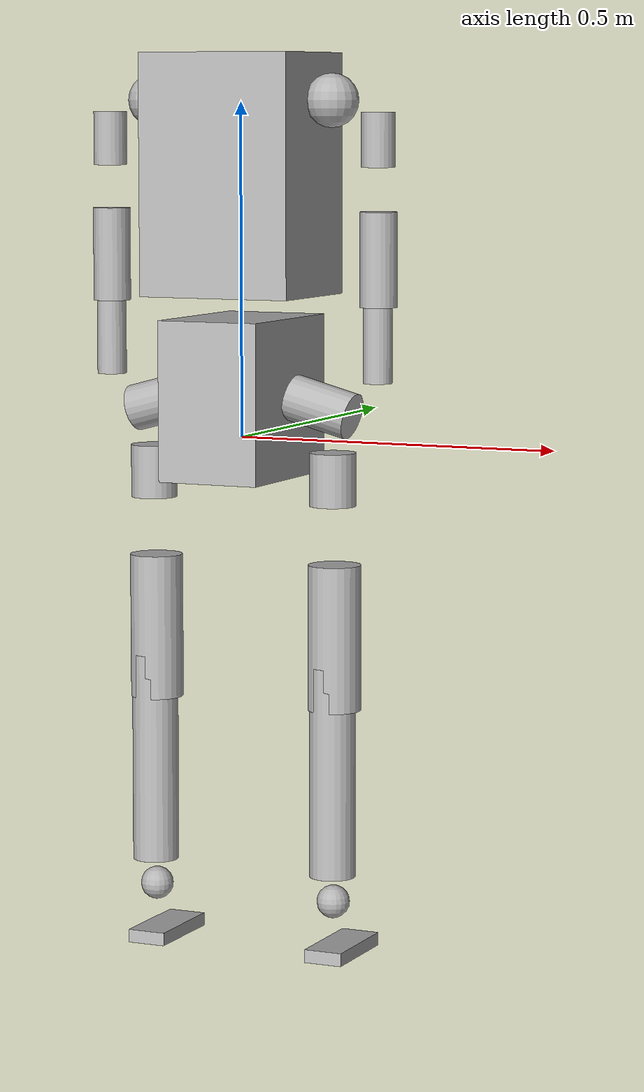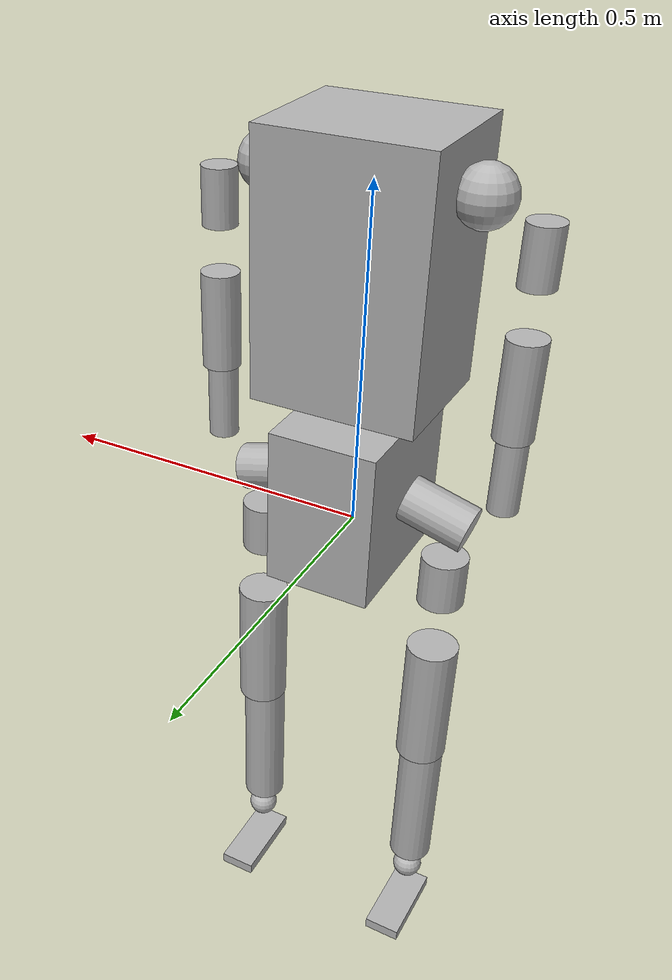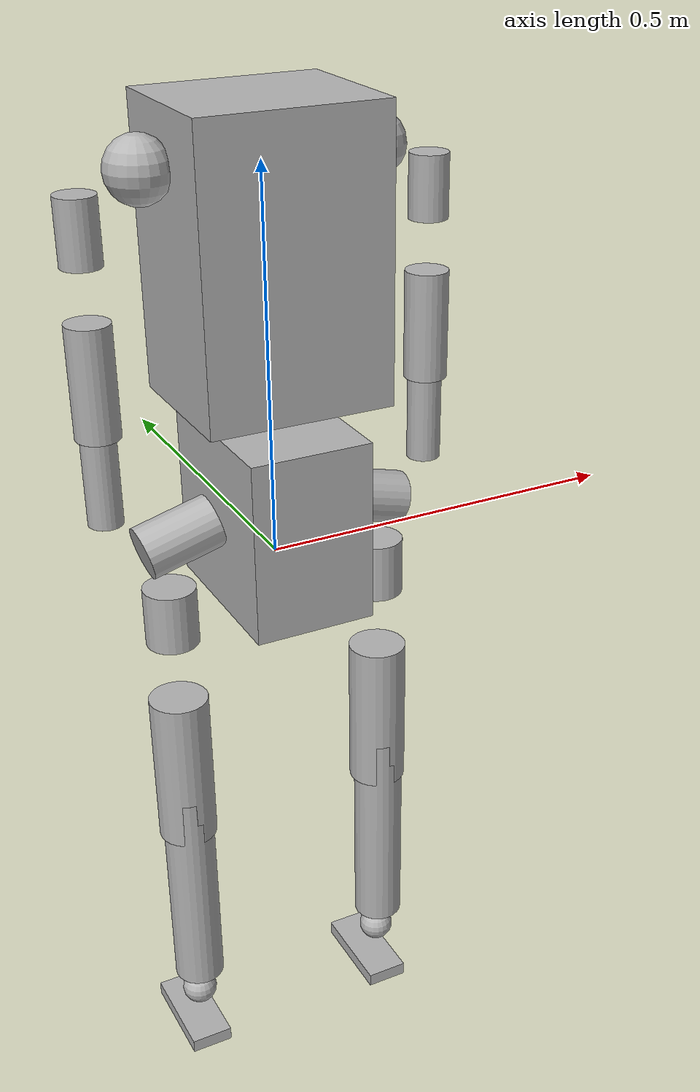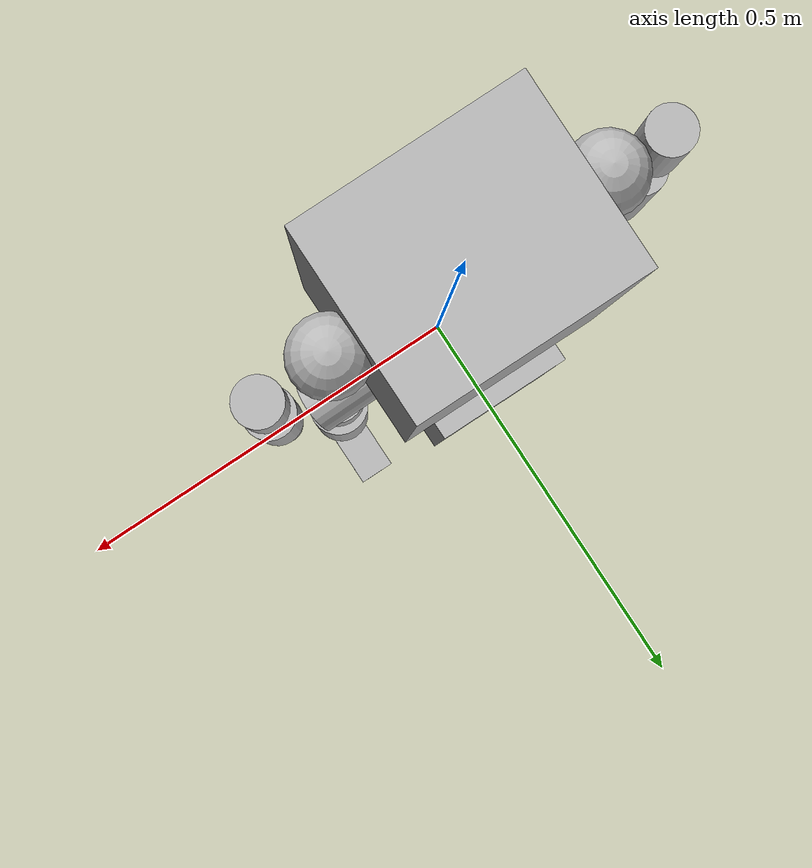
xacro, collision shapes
<?xml version="1.0"?>
<robot name="angad_full_body" xmlns:xacro="http://www.ros.org/wiki/xacro">

    <!-- Find the mesh directory via the upper_body package (which has XP_robot meshes fallback) -->
    <!-- For the RSP we use the XP_robot path directly -->
    <xacro:property name="xp_mesh" value="file:////home/a/humanoid_ws/src/XP_robot/meshes" />
    <xacro:arg name="use_real_hardware" default="false" />

    <material name="silver">
        <color rgba="0.7 0.7 0.7 1.0" />
    </material>

    <!-- Dummy root link for KDL / MoveIt.
         Physics still comes from MuJoCo, so this only affects the URDF tree. -->
    <link name="base_link" />

    <joint name="base_link_to_pelvis" type="fixed">
        <origin xyz="0 0 0" rpy="0 0 0" />
        <parent link="base_link" />
        <child link="pelvis" />
    </joint>

    <!-- ══════════════════════════════════════════════════
       PELVIS  (free root in MuJoCo; dummy parent only for URDF/KDL)
  ══════════════════════════════════════════════════ -->
    <link name="pelvis">
        <inertial>
            <origin xyz="0 0 0.109" rpy="0 0 0" />
            <mass value="5.565" />
            <inertia ixx="0.06430" iyy="0.07731" izz="0.04267"
                ixy="0" iyz="0" ixz="0" />
        </inertial>
        <visual>
            <origin xyz="0 0 0" rpy="0 0 0" />
            <geometry>
                <mesh filename="${xp_mesh}/pelvis.stl" scale="0.001 0.001 0.001" />
            </geometry>
            <material name="silver" />
        </visual>
        <collision>
            <origin xyz="0 0 0.06" rpy="0 0 0" />
            <geometry>
                <box size="0.16 0.24 0.24" />
            </geometry>
        </collision>
    </link>

    <!-- ══ RIGHT LEG ══ -->
    <link name="hip_pitch_r">
        <inertial>
            <origin xyz="-8e-05 0.00346 0.07278" rpy="0 0 0" />
            <mass value="1.008" />
            <inertia ixx="0.00415" iyy="0.00587" izz="0.00350" ixy="0" iyz="0" ixz="0" />
        </inertial>
        <visual>
            <origin xyz="0 0 0" rpy="0 0 0" />
            <geometry>
                <mesh filename="${xp_mesh}/hip_pitch_r.stl" scale="0.001 0.001 0.001" />
            </geometry>
            <material name="silver" />
        </visual>
        <collision>
            <origin xyz="0 0 0.06" rpy="0 0 0" />
            <geometry>
                <cylinder radius="0.035" length="0.10" />
            </geometry>
        </collision>
    </link>
    <joint name="hip_pitch_r" type="revolute">
        <origin xyz="-0.074290 0.000000 0.065550" rpy="-3.141593 -1.308997 -3.141593" />
        <parent link="pelvis" />
        <child link="hip_pitch_r" />
        <axis xyz="0 0 -1" />
        <limit lower="-3.1416" upper="3.1416" effort="150" velocity="5" />
        <dynamics damping="5.0" friction="0.1" />
    </joint>

    <link name="hip_roll_r">
        <inertial>
            <origin xyz="3.5e-05 -3e-08 0.03968" rpy="0 0 0" />
            <mass value="1.319" />
            <inertia ixx="0.00871" iyy="0.01037" izz="0.00721" ixy="0" iyz="0" ixz="0" />
        </inertial>
        <visual>
            <origin xyz="0 0 0" rpy="0 0 0" />
            <geometry>
                <mesh filename="${xp_mesh}/hip_roll_r.stl" scale="0.001 0.001 0.001" />
            </geometry>
            <material name="silver" />
        </visual>
        <collision>
            <origin xyz="0 0 0.04" rpy="0 0 0" />
            <geometry>
                <cylinder radius="0.035" length="0.08" />
            </geometry>
        </collision>
    </link>
    <link name="hip_roll_r_frame" />

    <joint name="hip_roll_r" type="revolute">
        <origin xyz="-0.000093 -0.022500 0.077909" rpy="-1.832596 0.000000 -1.570796" />
        <parent link="hip_pitch_r" />
        <child link="hip_roll_r_frame" />
        <axis xyz="1 0 0" />
        <limit lower="-2.35" upper="0.292" effort="120" velocity="5" />
        <dynamics damping="5.0" friction="0.1" />
    </joint>

    <joint name="hip_roll_r_fix" type="fixed">
        <origin xyz="-0.022500 0.000000 -0.143000" rpy="0 0 0" />
        <parent link="hip_roll_r_frame" />
        <child link="hip_roll_r" />
    </joint>

    <link name="thigh_r">
        <inertial>
            <origin xyz="0.01437 -0.13463 -0.04238" rpy="0 0 0" />
            <mass value="2.264" />
            <inertia ixx="0.04565" iyy="0.04875" izz="0.00823" ixy="0" iyz="0" ixz="0" />
        </inertial>
        <visual>
            <origin xyz="0 0 0" rpy="0 0 0" />
            <geometry>
                <mesh filename="${xp_mesh}/thigh_r.stl" scale="0.001 0.001 0.001" />
            </geometry>
            <material name="silver" />
        </visual>
        <collision>
            <origin xyz="0.01 -0.13 -0.03" rpy="0 0 0" />
            <geometry>
                <cylinder radius="0.04" length="0.22" />
            </geometry>
        </collision>
    </link>
    <link name="thigh_yaw_r_frame" />

    <joint name="thigh_yaw_r" type="revolute">
        <origin xyz="0.000000 0.000000 -0.005500" rpy="0 0 0" />
        <parent link="hip_roll_r" />
        <child link="thigh_yaw_r_frame" />
        <axis xyz="0 0 -1" />
        <limit lower="-3.1416" upper="3.1416" effort="80" velocity="5" />
        <dynamics damping="5.0" friction="0.1" />
    </joint>

    <joint name="thigh_yaw_r_fix" type="fixed">
        <origin xyz="-0.011580 0.131790 -0.163040" rpy="0 0 0" />
        <parent link="thigh_yaw_r_frame" />
        <child link="thigh_r" />
    </joint>

    <link name="leg_shank_r">
        <inertial>
            <origin xyz="-0.14872 -0.00406 -0.50123" rpy="0 0 0" />
            <mass value="1.446" />
            <inertia ixx="0.02297" iyy="0.02434" izz="0.00263" ixy="0" iyz="0" ixz="0" />
        </inertial>
        <visual>
            <origin xyz="0 0 0" rpy="0 0 0" />
            <geometry>
                <mesh filename="${xp_mesh}/leg_shank_r.stl" scale="0.001 0.001 0.001" />
            </geometry>
            <material name="silver" />
        </visual>
        <collision>
            <origin xyz="-0.148 -0.004 -0.50" rpy="0 0 0" />
            <geometry>
                <cylinder radius="0.035" length="0.32" />
            </geometry>
        </collision>
    </link>
    <link name="knee_pitch_r_frame" />

    <joint name="knee_pitch_r" type="revolute">
        <origin xyz="0.011589 -0.160545 -0.086954" rpy="-0.002816 0.000696 1.571419" />
        <parent link="thigh_r" />
        <child link="knee_pitch_r_frame" />
        <axis xyz="-1 0 0" />
        <limit lower="-1.5708" upper="0.0" effort="200" velocity="5" />
        <dynamics damping="5.0" friction="0.1" />
    </joint>

    <joint name="knee_pitch_r_fix" type="fixed">
        <origin xyz="0.177560 0.000500 0.352910" rpy="0 0 0" />
        <parent link="knee_pitch_r_frame" />
        <child link="leg_shank_r" />
    </joint>

    <link name="uj_r">
        <inertial>
            <origin xyz="0 0 -5.22e-05" rpy="0 0 0" />
            <mass value="0.098" />
            <inertia ixx="1.0e-05" iyy="8.6e-06" izz="1.6e-05" ixy="0" iyz="0" ixz="0" />
        </inertial>
        <visual>
            <origin xyz="0 0 0" rpy="0 0 0" />
            <geometry>
                <mesh filename="${xp_mesh}/uj_r.stl" scale="0.001 0.001 0.001" />
            </geometry>
            <material name="silver" />
        </visual>
        <collision>
            <origin xyz="0 0 0" rpy="0 0 0">
            </origin>
            <geometry>
                <sphere radius="0.025" />
            </geometry>
        </collision>
    </link>
    <link name="ankle_pitch_r_frame" />

    <joint name="ankle_pitch_r" type="revolute">
        <origin xyz="-0.165570 0.000677 -0.700162" rpy="0.000694 0.002816 -1.571420" />
        <parent link="leg_shank_r" />
        <child link="ankle_pitch_r_frame" />
        <axis xyz="0 1 0" />
        <limit lower="-0.6981" upper="0.6981" effort="80" velocity="5" />
        <dynamics damping="5.0" friction="0.1" />
    </joint>

    <joint name="ankle_pitch_r_fix" type="fixed">
        <origin xyz="0.000000 0.017000 0.000000" rpy="0 0 0" />
        <parent link="ankle_pitch_r_frame" />
        <child link="uj_r" />
    </joint>

    <link name="foot_r">
        <inertial>
            <origin xyz="-6.6e-11 0.02074 -4.8e-04" rpy="0 0 0" />
            <mass value="0.365" />
            <inertia ixx="8.3e-04" iyy="2.8e-04" izz="9.5e-04" ixy="0" iyz="0" ixz="0" />
        </inertial>
        <visual>
            <origin xyz="0 0 0" rpy="0 0 0" />
            <geometry>
                <mesh filename="${xp_mesh}/foot_r.stl" scale="0.001 0.001 0.001" />
            </geometry>
            <material name="silver" />
        </visual>
        <collision>
            <origin xyz="0 0.055 -0.048" rpy="0 0 0" />
            <geometry>
                <box size="0.06 0.14 0.02" />
            </geometry>
        </collision>
    </link>
    <link name="ankle_roll_r_frame" />

    <joint name="ankle_roll_r" type="revolute">
        <origin xyz="-0.017000 0.000000 0.000000" rpy="0.000000 0.000000 1.570796" />
        <parent link="uj_r" />
        <child link="ankle_roll_r_frame" />
        <axis xyz="0 -1 0" />
        <limit lower="-0.3491" upper="0.3491" effort="60" velocity="5" />
        <dynamics damping="5.0" friction="0.1" />
    </joint>

    <joint name="ankle_roll_r_fix" type="fixed">
        <origin xyz="0.000000 -0.040500 -0.030990" rpy="0 0 0" />
        <parent link="ankle_roll_r_frame" />
        <child link="foot_r" />
    </joint>

    <!-- ══ LEFT LEG ══ -->
    <link name="hip_pitch_l">
        <inertial>
            <origin xyz="-8e-05 0.00346 0.07278" rpy="0 0 0" />
            <mass value="1.008" />
            <inertia ixx="0.00415" iyy="0.00587" izz="0.00350" ixy="0" iyz="0" ixz="0" />
        </inertial>
        <visual>
            <origin xyz="0 0 0" rpy="0 0 0" />
            <geometry>
                <mesh filename="${xp_mesh}/hip_pitch_l.stl" scale="0.001 0.001 0.001" />
            </geometry>
            <material name="silver" />
        </visual>
        <collision>
            <origin xyz="0 0 0.06" rpy="0 0 0">
            </origin>
            <geometry>
                <cylinder radius="0.035" length="0.10" />
            </geometry>
        </collision>
    </link>
    <joint name="hip_pitch_l" type="revolute">
        <origin xyz="0.074290 0.000000 0.065550" rpy="3.141593 1.308997 -3.141593" />
        <parent link="pelvis" />
        <child link="hip_pitch_l" />
        <axis xyz="0 0 1" />
        <limit lower="-3.1416" upper="3.1416" effort="150" velocity="5" />
        <dynamics damping="5.0" friction="0.1" />
    </joint>

    <link name="hip_roll_l">
        <inertial>
            <origin xyz="3.5e-05 -3e-08 0.03968" rpy="0 0 0" />
            <mass value="1.319" />
            <inertia ixx="0.00871" iyy="0.01037" izz="0.00721" ixy="0" iyz="0" ixz="0" />
        </inertial>
        <visual>
            <origin xyz="0 0 0" rpy="0 0 0" />
            <geometry>
                <mesh filename="${xp_mesh}/hip_roll_l.stl" scale="0.001 0.001 0.001" />
            </geometry>
            <material name="silver" />
        </visual>
        <collision>
            <origin xyz="0 0 0.04" rpy="0 0 0">
            </origin>
            <geometry>
                <cylinder radius="0.035" length="0.08" />
            </geometry>
        </collision>
    </link>
    <link name="hip_roll_l_frame" />

    <joint name="hip_roll_l" type="revolute">
        <origin xyz="-0.000097 -0.022500 0.077909" rpy="1.832596 0.000000 -1.570796" />
        <parent link="hip_pitch_l" />
        <child link="hip_roll_l_frame" />
        <axis xyz="1 0 0" />
        <limit lower="-0.292" upper="2.35" effort="120" velocity="5" />
        <dynamics damping="5.0" friction="0.1" />
    </joint>

    <joint name="hip_roll_l_fix" type="fixed">
        <origin xyz="-0.022500 0.000000 -0.143000" rpy="0 0 0" />
        <parent link="hip_roll_l_frame" />
        <child link="hip_roll_l" />
    </joint>

    <link name="thigh_l">
        <inertial>
            <origin xyz="0.01437 -0.13463 -0.04238" rpy="0 0 0" />
            <mass value="2.264" />
            <inertia ixx="0.04565" iyy="0.04875" izz="0.00823" ixy="0" iyz="0" ixz="0" />
        </inertial>
        <visual>
            <origin xyz="0 0 0" rpy="0 0 0" />
            <geometry>
                <mesh filename="${xp_mesh}/thigh_l.stl" scale="0.001 0.001 0.001" />
            </geometry>
            <material name="silver" />
        </visual>
        <collision>
            <origin xyz="0.01 -0.13 -0.03" rpy="0 0 0">
            </origin>
            <geometry>
                <cylinder radius="0.04" length="0.22" />
            </geometry>
        </collision>
    </link>
    <link name="thigh_yaw_l_frame" />

    <joint name="thigh_yaw_l" type="revolute">
        <origin xyz="0.000000 0.000000 -0.005500" rpy="0 0 0" />
        <parent link="hip_roll_l" />
        <child link="thigh_yaw_l_frame" />
        <axis xyz="0 0 -1" />
        <limit lower="-3.1416" upper="3.1416" effort="80" velocity="5" />
        <dynamics damping="5.0" friction="0.1" />
    </joint>

    <joint name="thigh_yaw_l_fix" type="fixed">
        <origin xyz="-0.011580 0.131790 -0.163040" rpy="0 0 0" />
        <parent link="thigh_yaw_l_frame" />
        <child link="thigh_l" />
    </joint>

    <link name="leg_shank_l">
        <inertial>
            <origin xyz="-0.14872 -0.00406 -0.50123" rpy="0 0 0" />
            <mass value="1.446" />
            <inertia ixx="0.02297" iyy="0.02434" izz="0.00263" ixy="0" iyz="0" ixz="0" />
        </inertial>
        <visual>
            <origin xyz="0 0 0" rpy="0 0 0" />
            <geometry>
                <mesh filename="${xp_mesh}/leg_shank_l.stl" scale="0.001 0.001 0.001" />
            </geometry>
            <material name="silver" />
        </visual>
        <collision>
            <origin xyz="-0.148 -0.004 -0.50" rpy="0 0 0">
            </origin>
            <geometry>
                <cylinder radius="0.035" length="0.32" />
            </geometry>
        </collision>
    </link>
    <link name="knee_pitch_l_frame" />

    <joint name="knee_pitch_l" type="revolute">
        <origin xyz="0.011589 -0.160545 -0.086954" rpy="-0.002816 0.000696 1.571419" />
        <parent link="thigh_l" />
        <child link="knee_pitch_l_frame" />
        <axis xyz="-1 0 0" />
        <limit lower="-1.5708" upper="0.0" effort="200" velocity="5" />
        <dynamics damping="5.0" friction="0.1" />
    </joint>

    <joint name="knee_pitch_l_fix" type="fixed">
        <origin xyz="0.177560 0.000500 0.352910" rpy="0 0 0" />
        <parent link="knee_pitch_l_frame" />
        <child link="leg_shank_l" />
    </joint>

    <link name="uj_l">
        <inertial>
            <origin xyz="0 0 -5.22e-05" rpy="0 0 0" />
            <mass value="0.098" />
            <inertia ixx="1.0e-05" iyy="8.6e-06" izz="1.6e-05" ixy="0" iyz="0" ixz="0" />
        </inertial>
        <visual>
            <origin xyz="0 0 0" rpy="0 0 0" />
            <geometry>
                <mesh filename="${xp_mesh}/uj_l.stl" scale="0.001 0.001 0.001" />
            </geometry>
            <material name="silver" />
        </visual>
        <collision>
            <origin xyz="0 0 0" rpy="0 0 0">
            </origin>
            <geometry>
                <sphere radius="0.025" />
            </geometry>
        </collision>
    </link>
    <link name="ankle_pitch_l_frame" />

    <joint name="ankle_pitch_l" type="revolute">
        <origin xyz="-0.165570 0.000677 -0.700162" rpy="3.140898 -0.002813 1.570170" />
        <parent link="leg_shank_l" />
        <child link="ankle_pitch_l_frame" />
        <axis xyz="0 1 0" />
        <limit lower="-0.6981" upper="0.6981" effort="80" velocity="5" />
        <dynamics damping="5.0" friction="0.1" />
    </joint>

    <joint name="ankle_pitch_l_fix" type="fixed">
        <origin xyz="0.000000 0.017000 0.000000" rpy="0 0 0" />
        <parent link="ankle_pitch_l_frame" />
        <child link="uj_l" />
    </joint>

    <link name="foot_l">
        <inertial>
            <origin xyz="-6.6e-11 0.02074 -4.8e-04" rpy="0 0 0" />
            <mass value="0.365" />
            <inertia ixx="8.3e-04" iyy="2.8e-04" izz="9.5e-04" ixy="0" iyz="0" ixz="0" />
        </inertial>
        <visual>
            <origin xyz="0 0 0" rpy="0 0 0" />
            <geometry>
                <mesh filename="${xp_mesh}/foot_l.stl" scale="0.001 0.001 0.001" />
            </geometry>
            <material name="silver" />
        </visual>
        <collision>
            <origin xyz="0 0.055 -0.048" rpy="0 0 0">
            </origin>
            <geometry>
                <box size="0.06 0.14 0.02" />
            </geometry>
        </collision>
    </link>
    <link name="ankle_roll_l_frame" />

    <joint name="ankle_roll_l" type="revolute">
        <origin xyz="0.017000 -0.000000 0.000000" rpy="-3.141593 0.000000 1.570796" />
        <parent link="uj_l" />
        <child link="ankle_roll_l_frame" />
        <axis xyz="0 -1 0" />
        <limit lower="-0.3491" upper="0.3491" effort="60" velocity="5" />
        <dynamics damping="5.0" friction="0.1" />
    </joint>

    <joint name="ankle_roll_l_fix" type="fixed">
        <origin xyz="0.000000 -0.040500 -0.030990" rpy="0 0 0" />
        <parent link="ankle_roll_l_frame" />
        <child link="foot_l" />
    </joint>

    <!-- ══ TORSO ══ -->
    <link name="torso">
        <inertial>
            <origin xyz="0.00217 0.00139 0.22276" rpy="0 0 0" />
            <mass value="4.529" />
            <inertia ixx="0.13599" iyy="0.20074" izz="0.11603" ixy="0" iyz="0" ixz="0" />
        </inertial>
        <visual>
            <origin xyz="0 0 0" rpy="0 0 0" />
            <geometry>
                <mesh filename="${xp_mesh}/torso.stl" scale="0.001 0.001 0.001" />
            </geometry>
            <material name="silver" />
        </visual>
        <collision>
            <origin xyz="0 0 0.18" rpy="0 0 0">
            </origin>
            <geometry>
                <box size="0.24 0.20 0.36" />
            </geometry>
        </collision>
    </link>
    <joint name="torso_yaw" type="revolute">
        <origin xyz="0.000000 0.000000 0.213090" rpy="0.000000 0.000000 3.141593" />
        <parent link="pelvis" />
        <child link="torso" />
        <axis xyz="0 0 -1" />
        <limit lower="-3.1416" upper="3.1416" effort="100" velocity="5" />
        <dynamics damping="5.0" friction="0.1" />
    </joint>

    <!-- ══ RIGHT ARM ══ -->
    <link name="shoulder_pitch_r">
        <inertial>
            <origin xyz="0.00218 -0.00191 0.02403" rpy="0 0 0" />
            <mass value="0.929" />
            <inertia ixx="0.00327" iyy="0.00493" izz="0.00368" ixy="0" iyz="0" ixz="0" />
        </inertial>
        <visual>
            <origin xyz="0 0 0" rpy="0 0 0" />
            <geometry>
                <mesh filename="${xp_mesh}/shoulder_pitch_r.stl" scale="0.001 0.001 0.001" />
            </geometry>
            <material name="silver" />
        </visual>
        <collision>
            <origin xyz="0.075 0 0.024" rpy="0 0 0">
            </origin>
            <geometry>
                <sphere radius="0.04" />
            </geometry>
        </collision>
    </link>
    <link name="shoulder_pitch_r_frame" />

    <joint name="shoulder_pitch_r" type="revolute">
        <origin xyz="0.146020 0.000000 0.289500" rpy="0.000000 0.000000 -3.141593" />
        <parent link="torso" />
        <child link="shoulder_pitch_r_frame" />
        <axis xyz="-1 0 0" />
        <limit lower="-3.1416" upper="3.1416" effort="100" velocity="5" />
        <dynamics damping="5.0" friction="0.1" />
    </joint>

    <joint name="shoulder_pitch_r_fix" type="fixed">
        <origin xyz="-0.075500 0.004280 -0.024030" rpy="0 0 0" />
        <parent link="shoulder_pitch_r_frame" />
        <child link="shoulder_pitch_r" />
    </joint>

    <link name="shoulder_roll_r">
        <inertial>
            <origin xyz="3.74e-04 -8.4e-07 0.02539" rpy="0 0 0" />
            <mass value="0.640" />
            <inertia ixx="0.00132" iyy="0.00173" izz="0.00156" ixy="0" iyz="0" ixz="0" />
        </inertial>
        <visual>
            <origin xyz="0 0 0" rpy="0 0 0" />
            <geometry>
                <mesh filename="${xp_mesh}/shoulder_roll_r.stl" scale="0.001 0.001 0.001" />
            </geometry>
            <material name="silver" />
        </visual>
        <collision>
            <origin xyz="0 0 0.05" rpy="0 0 0">
            </origin>
            <geometry>
                <cylinder radius="0.025" length="0.08" />
            </geometry>
        </collision>
    </link>
    <link name="shoulder_roll_r_frame" />

    <joint name="shoulder_roll_r" type="revolute">
        <origin xyz="0.000000 -0.044530 0.024040" rpy="0.000000 0.000000 -1.570796" />
        <parent link="shoulder_pitch_r" />
        <child link="shoulder_roll_r_frame" />
        <axis xyz="-1 0 0" />
        <limit lower="-0.0873" upper="3.3161" effort="100" velocity="5" />
        <dynamics damping="5.0" friction="0.1" />
    </joint>

    <joint name="shoulder_roll_r_fix" type="fixed">
        <origin xyz="-0.042250 0.000000 -0.107340" rpy="0 0 0" />
        <parent link="shoulder_roll_r_frame" />
        <child link="shoulder_roll_r" />
    </joint>

    <link name="bicep_r">
        <inertial>
            <origin xyz="4.67e-04 -4.75e-03 -0.09020" rpy="0 0 0" />
            <mass value="0.648" />
            <inertia ixx="0.00380" iyy="0.00362" izz="0.00161" ixy="0" iyz="0" ixz="0" />
        </inertial>
        <visual>
            <origin xyz="0 0 0" rpy="0 0 0" />
            <geometry>
                <mesh filename="${xp_mesh}/bicep_r.stl" scale="0.001 0.001 0.001" />
            </geometry>
            <material name="silver" />
        </visual>
        <collision>
            <origin xyz="0.0005 -0.005 -0.090" rpy="0 0 0">
            </origin>
            <geometry>
                <cylinder radius="0.028" length="0.14" />
            </geometry>
        </collision>
    </link>
    <link name="elbow_yaw_r_frame" />

    <joint name="elbow_yaw_r" type="revolute">
        <origin xyz="0.000010 0.000000 -0.004000" rpy="0.000000 0.000000 1.570796" />
        <parent link="shoulder_roll_r" />
        <child link="elbow_yaw_r_frame" />
        <axis xyz="0 0 -1" />
        <limit lower="-3.1416" upper="3.1416" effort="50" velocity="5" />
        <dynamics damping="5.0" friction="0.1" />
    </joint>

    <joint name="elbow_yaw_r_fix" type="fixed">
        <origin xyz="0.000000 0.006160 -0.031000" rpy="0 0 0" />
        <parent link="elbow_yaw_r_frame" />
        <child link="bicep_r" />
    </joint>

    <link name="forearm_r">
        <inertial>
            <origin xyz="0.00311 -0.03400 -0.10268" rpy="0 0 0" />
            <mass value="0.370" />
            <inertia ixx="0.00122" iyy="0.00130" izz="3.09e-04" ixy="0" iyz="0" ixz="0" />
        </inertial>
        <visual>
            <origin xyz="0 0 0" rpy="0 0 0" />
            <geometry>
                <mesh filename="${xp_mesh}/forearm_r.stl" scale="0.001 0.001 0.001" />
            </geometry>
            <material name="silver" />
        </visual>
        <collision>
            <origin xyz="0.003 -0.034 -0.103" rpy="0 0 0">
            </origin>
            <geometry>
                <cylinder radius="0.022" length="0.14" />
            </geometry>
        </collision>
    </link>
    <link name="elbow_pitch_r_frame" />

    <joint name="elbow_pitch_r" type="revolute">
        <origin xyz="-0.032000 -0.006150 -0.099990" rpy="0.000000 0.000000 0.000000" />
        <parent link="bicep_r" />
        <child link="elbow_pitch_r_frame" />
        <axis xyz="1 0 0" />
        <limit lower="-0.0873" upper="3.3161" effort="50" velocity="5" />
        <dynamics damping="5.0" friction="0.1" />
    </joint>

    <joint name="elbow_pitch_r_fix" type="fixed">
        <origin xyz="0.028390 0.034520 0.001080" rpy="0 0 0" />
        <parent link="elbow_pitch_r_frame" />
        <child link="forearm_r" />
    </joint>

    <!-- ══ LEFT ARM ══ -->
    <link name="shoulder_pitch_l">
        <inertial>
            <origin xyz="0.00218 -0.00191 0.02403" rpy="0 0 0" />
            <mass value="0.929" />
            <inertia ixx="0.00327" iyy="0.00493" izz="0.00368" ixy="0" iyz="0" ixz="0" />
        </inertial>
        <visual>
            <origin xyz="0 0 0" rpy="0 0 0" />
            <geometry>
                <mesh filename="${xp_mesh}/shoulder_pitch_l.stl" scale="0.001 0.001 0.001" />
            </geometry>
            <material name="silver" />
        </visual>
        <collision>
            <origin xyz="0.075 0 0.024" rpy="0 0 0">
            </origin>
            <geometry>
                <sphere radius="0.04" />
            </geometry>
        </collision>
    </link>
    <link name="shoulder_pitch_l_frame" />

    <joint name="shoulder_pitch_l" type="revolute">
        <origin xyz="-0.146020 0.000000 0.289510" rpy="-3.141593 0.000000 0.000000" />
        <parent link="torso" />
        <child link="shoulder_pitch_l_frame" />
        <axis xyz="1 0 0" />
        <limit lower="-3.1416" upper="3.1416" effort="100" velocity="5" />
        <dynamics damping="5.0" friction="0.1" />
    </joint>

    <joint name="shoulder_pitch_l_fix" type="fixed">
        <origin xyz="-0.075500 0.004280 -0.024030" rpy="0 0 0" />
        <parent link="shoulder_pitch_l_frame" />
        <child link="shoulder_pitch_l" />
    </joint>

    <link name="shoulder_roll_l">
        <inertial>
            <origin xyz="3.74e-04 -8.4e-07 0.02539" rpy="0 0 0" />
            <mass value="0.640" />
            <inertia ixx="0.00132" iyy="0.00173" izz="0.00156" ixy="0" iyz="0" ixz="0" />
        </inertial>
        <visual>
            <origin xyz="0 0 0" rpy="0 0 0" />
            <geometry>
                <mesh filename="${xp_mesh}/shoulder_roll_l.stl" scale="0.001 0.001 0.001" />
            </geometry>
            <material name="silver" />
        </visual>
        <collision>
            <origin xyz="0 0 0.05" rpy="0 0 0">
            </origin>
            <geometry>
                <cylinder radius="0.025" length="0.08" />
            </geometry>
        </collision>
    </link>
    <link name="shoulder_roll_l_frame" />

    <joint name="shoulder_roll_l" type="revolute">
        <origin xyz="0.000000 -0.044530 0.024030" rpy="-3.141593 0.000000 -1.570796" />
        <parent link="shoulder_pitch_l" />
        <child link="shoulder_roll_l_frame" />
        <axis xyz="-1 0 0" />
        <limit lower="-3.3161" upper="0.0873" effort="100" velocity="5" />
        <dynamics damping="5.0" friction="0.1" />
    </joint>

    <joint name="shoulder_roll_l_fix" type="fixed">
        <origin xyz="-0.042250 0.000000 -0.107340" rpy="0 0 0" />
        <parent link="shoulder_roll_l_frame" />
        <child link="shoulder_roll_l" />
    </joint>

    <link name="bicep_l">
        <inertial>
            <origin xyz="4.67e-04 -4.75e-03 -0.09020" rpy="0 0 0" />
            <mass value="0.648" />
            <inertia ixx="0.00380" iyy="0.00362" izz="0.00161" ixy="0" iyz="0" ixz="0" />
        </inertial>
        <visual>
            <origin xyz="0 0 0" rpy="0 0 0" />
            <geometry>
                <mesh filename="${xp_mesh}/bicep_l.stl" scale="0.001 0.001 0.001" />
            </geometry>
            <material name="silver" />
        </visual>
        <collision>
            <origin xyz="0.0005 -0.005 -0.090" rpy="0 0 0">
            </origin>
            <geometry>
                <cylinder radius="0.028" length="0.14" />
            </geometry>
        </collision>
    </link>
    <link name="elbow_yaw_l_frame" />

    <joint name="elbow_yaw_l" type="revolute">
        <origin xyz="0.000010 0.000000 -0.004000" rpy="0.000000 0.000000 1.570796" />
        <parent link="shoulder_roll_l" />
        <child link="elbow_yaw_l_frame" />
        <axis xyz="0 0 -1" />
        <limit lower="-3.1416" upper="3.1416" effort="50" velocity="5" />
        <dynamics damping="5.0" friction="0.1" />
    </joint>

    <joint name="elbow_yaw_l_fix" type="fixed">
        <origin xyz="0.000000 0.006160 -0.031000" rpy="0 0 0" />
        <parent link="elbow_yaw_l_frame" />
        <child link="bicep_l" />
    </joint>

    <link name="forearm_l">
        <inertial>
            <origin xyz="0.00311 -0.03400 -0.10268" rpy="0 0 0" />
            <mass value="0.370" />
            <inertia ixx="0.00122" iyy="0.00130" izz="3.09e-04" ixy="0" iyz="0" ixz="0" />
        </inertial>
        <visual>
            <origin xyz="0 0 0" rpy="0 0 0" />
            <geometry>
                <mesh filename="${xp_mesh}/forearm_l.stl" scale="0.001 0.001 0.001" />
            </geometry>
            <material name="silver" />
        </visual>
        <collision>
            <origin xyz="0.003 -0.034 -0.103" rpy="0 0 0">
            </origin>
            <geometry>
                <cylinder radius="0.022" length="0.14" />
            </geometry>
        </collision>
    </link>
    <link name="elbow_pitch_l_frame" />

    <joint name="elbow_pitch_l" type="revolute">
        <origin xyz="-0.032000 -0.006150 -0.099990" rpy="0.000000 0.000000 0.000000" />
        <parent link="bicep_l" />
        <child link="elbow_pitch_l_frame" />
        <axis xyz="1 0 0" />
        <!-- upper padded 0.0 → 0.05 rad: the real encoder rests a few mrad past
             mechanical zero, which tripped MoveIt CheckStartStateBounds. -->
        <limit lower="-2.5307" upper="0.05" effort="50" velocity="5" />
        <dynamics damping="5.0" friction="0.1" />
    </joint>

    <joint name="elbow_pitch_l_fix" type="fixed">
        <origin xyz="0.028390 0.034520 0.001080" rpy="0 0 0" />
        <parent link="elbow_pitch_l_frame" />
        <child link="forearm_l" />
    </joint>

    <!-- ══ ROS 2 CONTROL PLUGIN ══ -->
    <xacro:include filename="$(find full_body_hardware)/urdf/full_body.ros2_control.xacro" />
    <xacro:full_body_hardware_ros2_control name="FullBodyMujocoSystem" use_real_hardware="$(arg use_real_hardware)" />

</robot>
